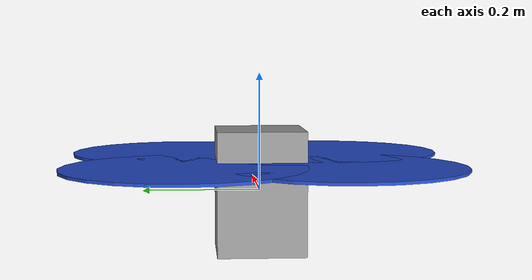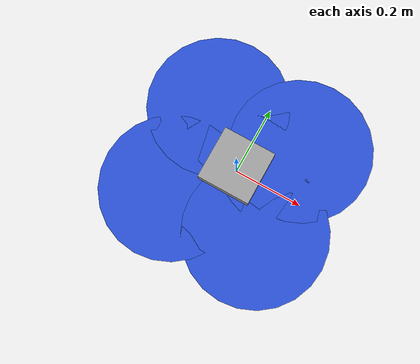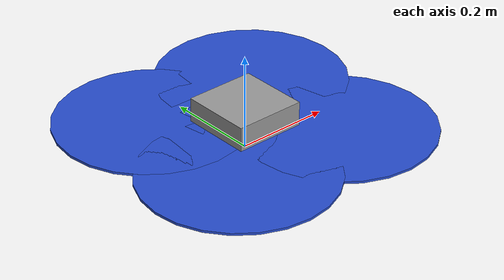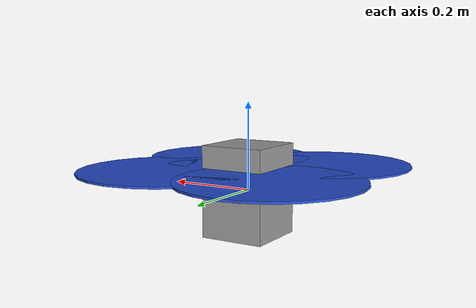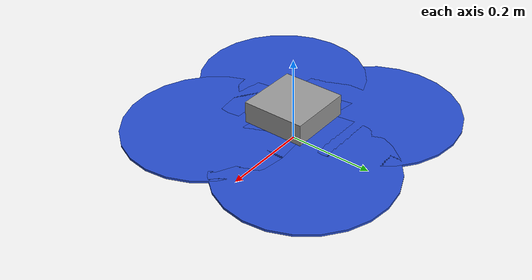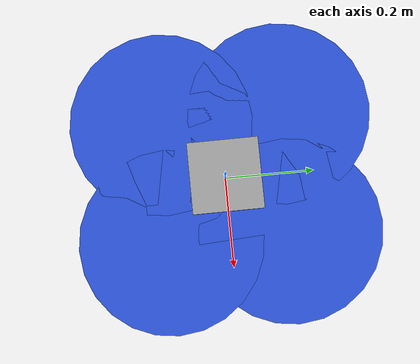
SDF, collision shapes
<?xml version="1.0" ?>

  <sdf version="1.5">
    <model name="uni350">

      <include>
        <uri>model://uni350_base</uri>
        <name>uni350_base</name>
        <pose>0 0 0.0 0 0 0</pose>
      </include>
      <include>
        <uri>model://uni350_prop</uri>
        <name>uni350_prop_0</name>
        <pose>0.12854 -0.12889 0.0512 0 0 0</pose>
      </include>
      <include>
        <uri>model://uni350_prop</uri>
        <name>uni350_prop_1</name>
        <pose>-0.12854 -0.12889 0.0512 0 0 0</pose>
      </include>
      <include>
        <uri>model://uni350_prop</uri>
        <name>uni350_prop_2</name>
        <pose>-0.12854 0.12889 0.0512 0 0 3.141592653589793</pose>
      </include>
      <include>
        <uri>model://uni350_prop</uri>
        <name>uni350_prop_3</name>
        <pose>0.12854 0.12889 0.0512 0 0 3.141592653589793</pose>
      </include>

      <joint name="uni350_prop_0_joint" type="revolute">
        <parent>uni350_base::platform_base</parent>
        <child>uni350_prop_0::prop </child>
        <axis>
          <xyz>0 0 1</xyz>
          <limit>
            <lower>-1e+16</lower>
            <upper>1e+16</upper>
          </limit>
          <dynamics>
            <damping>0.00001</damping>
          </dynamics>
          <use_parent_model_frame>1</use_parent_model_frame>
        </axis>
      </joint>

      <plugin name="uni350_prop_0_plugin" filename='librotors_gazebo_motor_model.so'>
        <robotNamespace></robotNamespace>
        <jointName>uni350_prop_0_joint </jointName>
        <linkName>uni350_prop_0::prop</linkName>
        <turningDirection>ccw</turningDirection>
        <timeConstantUp>0.0125</timeConstantUp>
        <timeConstantDown>0.025</timeConstantDown>
        <maxRotVelocity>1000</maxRotVelocity>
        <motorConstant>8.599e-05</motorConstant>
        <momentConstant>0.25</momentConstant>
        <commandSubTopic>/uni350/gazebo/command/prop_speed</commandSubTopic>
        <motorNumber>0</motorNumber>
        <rotorDragCoefficient>0.000806428</rotorDragCoefficient>
        <rollingMomentCoefficient>1e-06</rollingMomentCoefficient>
        <motorSpeedPubTopic>/uni350/prop_speed/0</motorSpeedPubTopic>
        <rotorVelocitySlowdownSim>10</rotorVelocitySlowdownSim>
      </plugin>

      <joint name="uni350_prop_1_joint" type="revolute">
        <parent>uni350_base::platform_base</parent>
        <child>uni350_prop_1::prop </child>
        <axis>
          <xyz>0 0 1</xyz>
          <limit>
            <lower>-1e+16</lower>
            <upper>1e+16</upper>
          </limit>
          <dynamics>
            <damping>0.00001</damping>
          </dynamics>
          <use_parent_model_frame>1</use_parent_model_frame>
        </axis>
      </joint>

      <plugin name="uni350_prop_1_plugin" filename='librotors_gazebo_motor_model.so'>
        <robotNamespace></robotNamespace>
        <jointName>uni350_prop_1_joint </jointName>
        <linkName>uni350_prop_1::prop</linkName>
        <turningDirection>cw</turningDirection>
        <timeConstantUp>0.0125</timeConstantUp>
        <timeConstantDown>0.025</timeConstantDown>
        <maxRotVelocity>1000</maxRotVelocity>
        <motorConstant>8.599e-05</motorConstant>
        <momentConstant>0.25</momentConstant>
        <commandSubTopic>/uni350/gazebo/command/prop_speed</commandSubTopic>
        <motorNumber>1</motorNumber>
        <rotorDragCoefficient>0.000806428</rotorDragCoefficient>
        <rollingMomentCoefficient>1e-06</rollingMomentCoefficient>
        <motorSpeedPubTopic>/uni350/prop_speed/1</motorSpeedPubTopic>
        <rotorVelocitySlowdownSim>10</rotorVelocitySlowdownSim>
      </plugin>

      <joint name="uni350_prop_2_joint" type="revolute">
        <parent>uni350_base::platform_base</parent>
        <child>uni350_prop_2::prop </child>
        <axis>
          <xyz>0 0 1</xyz>
          <limit>
            <lower>-1e+16</lower>
            <upper>1e+16</upper>
          </limit>
          <dynamics>
            <damping>0.00001</damping>
          </dynamics>
          <use_parent_model_frame>1</use_parent_model_frame>
        </axis>
      </joint>

      <plugin name="uni350_prop_2_plugin" filename='librotors_gazebo_motor_model.so'>
        <robotNamespace></robotNamespace>
        <jointName>uni350_prop_2_joint </jointName>
        <linkName>uni350_prop_2::prop</linkName>
        <turningDirection>ccw</turningDirection>
        <timeConstantUp>0.0125</timeConstantUp>
        <timeConstantDown>0.025</timeConstantDown>
        <maxRotVelocity>1000</maxRotVelocity>
        <motorConstant>8.599e-05</motorConstant>
        <momentConstant>0.25</momentConstant>
        <commandSubTopic>/uni350/gazebo/command/prop_speed</commandSubTopic>
        <motorNumber>2</motorNumber>
        <rotorDragCoefficient>0.000806428</rotorDragCoefficient>
        <rollingMomentCoefficient>1e-06</rollingMomentCoefficient>
        <motorSpeedPubTopic>/uni350/prop_speed/2</motorSpeedPubTopic>
        <rotorVelocitySlowdownSim>10</rotorVelocitySlowdownSim>
      </plugin>

      <joint name="uni350_prop_3_joint" type="revolute">
        <parent>uni350_base::platform_base</parent>
        <child>uni350_prop_3::prop </child>
        <axis>
          <xyz>0 0 1</xyz>
          <limit>
            <lower>-1e+16</lower>
            <upper>1e+16</upper>
          </limit>
          <dynamics>
            <damping>0.00001</damping>
          </dynamics>
          <use_parent_model_frame>1</use_parent_model_frame>
        </axis>
      </joint>

      <plugin name="uni350_prop_3_plugin" filename='librotors_gazebo_motor_model.so'>
        <robotNamespace></robotNamespace>
        <jointName>uni350_prop_3_joint </jointName>
        <linkName>uni350_prop_3::prop</linkName>
        <turningDirection>cw</turningDirection>
        <timeConstantUp>0.0125</timeConstantUp>
        <timeConstantDown>0.025</timeConstantDown>
        <maxRotVelocity>1000</maxRotVelocity>
        <motorConstant>8.599e-05</motorConstant>
        <momentConstant>0.25</momentConstant>
        <commandSubTopic>/uni350/gazebo/command/prop_speed</commandSubTopic>
        <motorNumber>3</motorNumber>
        <rotorDragCoefficient>0.000806428</rotorDragCoefficient>
        <rollingMomentCoefficient>1e-06</rollingMomentCoefficient>
        <motorSpeedPubTopic>/uni350/prop_speed/3</motorSpeedPubTopic>
        <rotorVelocitySlowdownSim>10</rotorVelocitySlowdownSim>
      </plugin>

    <plugin name="ArduRotorNormPlugin" filename="libArduRotorNormPlugin.so">
      <fdm_addr>127.0.0.1</fdm_addr>
      <fdm_port_in>9002</fdm_port_in>
      <fdm_port_out>9003</fdm_port_out>
      <modelXYZToAirplaneXForwardZDown>0 0 0 3.141593 0 0</modelXYZToAirplaneXForwardZDown>
      <gazeboXYZToNED>0 0 0 3.141593 0 0</gazeboXYZToNED>
      <motor_num>4</motor_num>
      <servo_num>0</servo_num>
      <motor_pub>/uni350/gazebo/command/prop_speed</motor_pub>
      <imuName>uni350::uni350_base::imu_link::imu_sensor</imuName>
      <connectionTimeoutMaxCount>5</connectionTimeoutMaxCount>
    </plugin>
  </model>

</sdf>

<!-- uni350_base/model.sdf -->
<sdf version="1.5">
    <model name="uni350_platform">

      <link name="platform_base">
      <pose>0 0 0.0  0 0 0</pose>
      <inertial>
        <pose>0 0 0 0 0 0</pose>
        <mass>5.5</mass>
        <inertia>
          <ixx>0.5</ixx>
          <iyy>0.5</iyy>
          <izz>0.2</izz>
          <ixy>0</ixy>
          <ixz>0</ixz>
          <iyz>0</iyz>
        </inertia>
      </inertial>
      <collision name="platform_base_collision">
        <pose>0 0 0  0 0 0</pose>
        <geometry>
          <box>
            <size>0.150 0.150 0.21</size>
          </box>
        </geometry>
        <surface>
          <contact>
            <ode>
              <max_vel>100.0</max_vel>
              <min_depth>0.001</min_depth>
            </ode>
          </contact>
          <friction>
            <ode>
              <mu>100000.0</mu>
              <mu2>100000.0</mu2>
            </ode>
          </friction>
        </surface>
      </collision>
      <visual name="platform_base_visual">
        <geometry>
          <mesh>
            <uri>model://uni350_base/meshes/body.STL</uri>
          </mesh>
        </geometry>
        <material>
          <script>
            <name>Gazebo/Grey</name>
          </script>
        </material>
      </visual>
    </link>
    <link name='imu_link'>
    <inertial>
      <pose>0 0 0 0 0 0</pose>
      <mass>0.15</mass>
      <inertia>
        <ixx>0.00001</ixx>
        <ixy>0</ixy>
        <ixz>0</ixz>
        <iyy>0.00002</iyy>
        <iyz>0</iyz>
        <izz>0.00002</izz>
      </inertia>
    </inertial>
    <sensor name="imu_sensor" type="imu">
      <pose>0 0 0 3.141593 0 0</pose>
      <always_on>1</always_on>
      <update_rate>1000.0</update_rate>
      <topic>__default_topic__</topic>
    </sensor>
  </link>
  <joint name='imu_joint' type='revolute'>
    <child>imu_link</child>
    <parent>platform_base</parent>
    <axis>
      <xyz>0 0 1</xyz>
      <limit>
        <lower>-0.0001</lower>
        <upper>0.00001</upper>
        <effort>0</effort>
        <velocity>0</velocity>
      </limit>
      <dynamics>
        <damping>1.0</damping>
      </dynamics>
      <use_parent_model_frame>1</use_parent_model_frame>
    </axis>
    <physics>
      <ode>
        <implicit_spring_damper>1</implicit_spring_damper>
      </ode>
    </physics>
  </joint>

</model>
</sdf>

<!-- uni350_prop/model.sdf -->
<sdf version="1.5">
    <model name="uni350_prop">
      <link name='prop'>
      <pose>0.0 -0.0 0.0 0 -0 0</pose>
      <inertial>
        <pose>0 0 0 0 -0 0</pose>
        <mass>0.025</mass>
        <inertia>
          <ixx>9.75e-06</ixx>
          <ixy>0</ixy>
          <ixz>0</ixz>
          <iyy>0.000166704</iyy>
          <iyz>0</iyz>
          <izz>0.000167604</izz>
        </inertia>
      </inertial>
      <collision name='rotor_collision'>
        <pose>0 0 0 0 -0 0</pose>
        <geometry>
          <cylinder>
            <length>0.005</length>
            <radius>0.2</radius>
          </cylinder>
        </geometry>
        <surface>
          <contact>
            <ode />
          </contact>
          <friction>
            <ode />
          </friction>
        </surface>
      </collision>
      <visual name='prop_visual'>
        <pose>0 0 0 0 -0 0</pose>
        <geometry>
          <mesh>
            <scale>1 1 1</scale>
            <uri>model://uni350_prop/meshes/prop.STL</uri>
          </mesh>
        </geometry>
        <material>
          <script>
            <name>Gazebo/Blue</name>
            <uri>__default__</uri>
          </script>
        </material>
      </visual>
      <gravity>1</gravity>
      <velocity_decay />
      <self_collide>0</self_collide>
    </link>
  </model>
</sdf>
